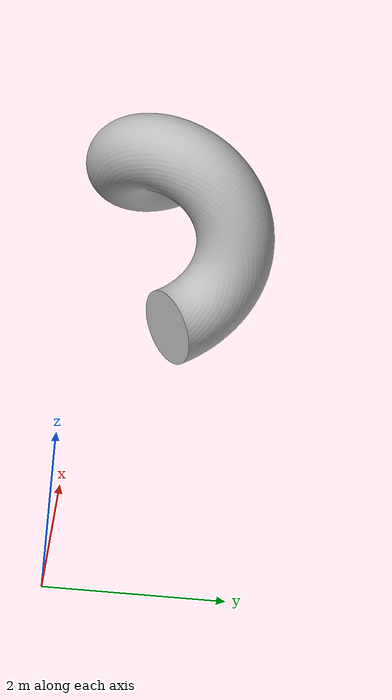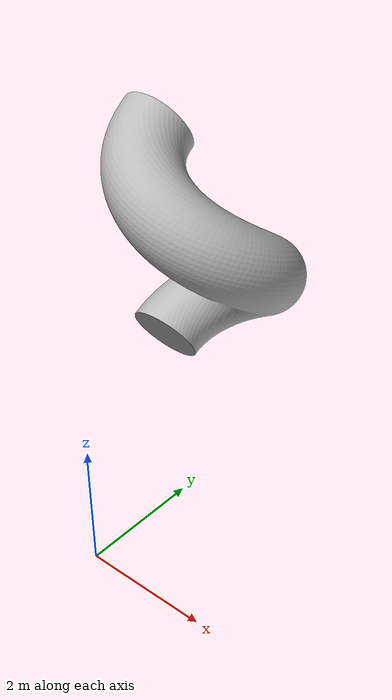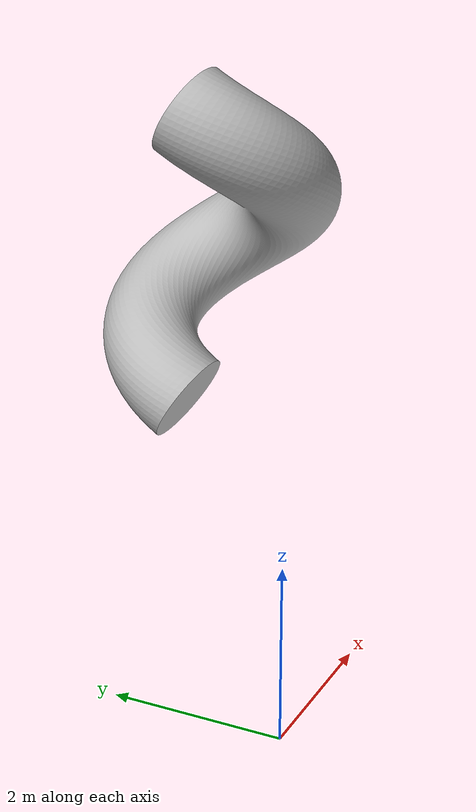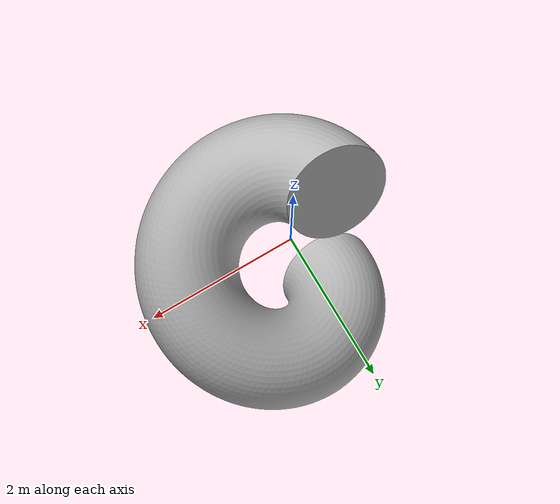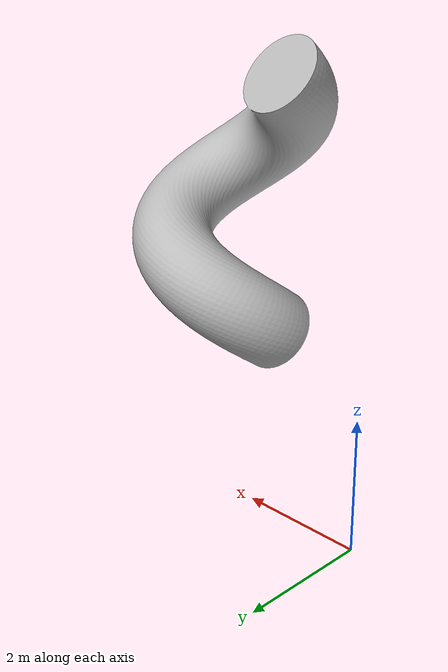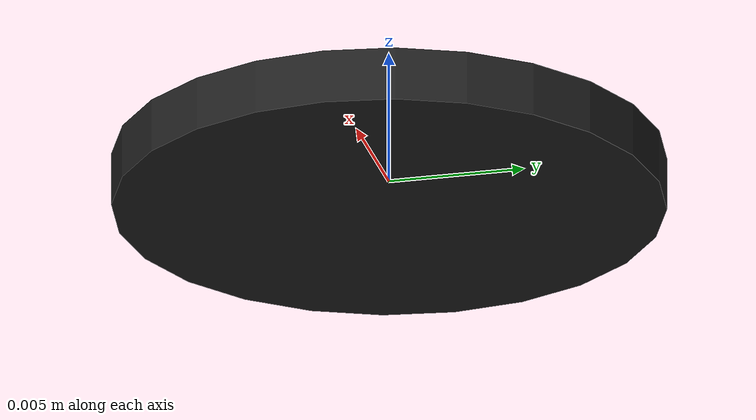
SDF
<?xml version="1.0" ?>
<!-- DO NOT EDIT: Generated from balloon.sdf.jinja -->
<sdf version="1.5">

  <model name="balloon">

    <self_collide>false</self_collide>
    <static>false</static>

    <link name="hull">
      <pose>-0.1299999999999999 0 3.1 0 0 0</pose>
      <inertial>
        <pose>0.13428439618155377 0 -0.5179715390893929 0 0 0</pose>
        <mass>7.04475</mass>
        <inertia>
          <ixx>1.2148485000000004</ixx>
          <iyy>4.840654375000001</iyy>
          <izz>7.943951303</izz>
        </inertia>
      </inertial>

      <gravity>true</gravity>
      <self_collide>false</self_collide>
      <velocity_decay/>

      <visual name="hull_visual">
        <geometry>
          <mesh>
            <scale>0.01 0.01 0.01</scale>
            <uri>model://balloon/meshes/balloon.stl</uri>
          </mesh>
        </geometry>
      </visual>

      <collision name="hull_collision">
        <pose>0 0 0 0 0 0</pose>
        <geometry>
          <mesh>
            <scale>0.01 0.01 0.01</scale>
            <uri>model://balloon/meshes/balloon.stl</uri>
          </mesh>
        </geometry>
      </collision>

    </link>

    <model name='gps0'>
      <link name='link'>
        <pose frame=''>0 0 0 0 0 0</pose>
        <inertial>
          <pose frame=''>0 0 0 0 0 0</pose>
          <mass>0.01</mass>
          <inertia>
            <ixx>2.1733e-06</ixx>
            <ixy>0</ixy>
            <ixz>0</ixz>
            <iyy>2.1733e-06</iyy>
            <iyz>0</iyz>
            <izz>1.8e-07</izz>
          </inertia>
        </inertial>
        <visual name='visual'>
          <geometry>
            <cylinder>
              <radius>0.01</radius>
              <length>0.002</length>
            </cylinder>
          </geometry>
          <material>
            <script>
              <name>Gazebo/Black</name>
              <uri>__default__</uri>
            </script>
          </material>
        </visual>
        <sensor name='gps' type='gps'>
          <pose frame=''>0 0 0 0 0 0</pose>
          <plugin name='gps_plugin' filename='libgazebo_gps_plugin.so'>
            <robotNamespace/>
            <gpsNoise>1</gpsNoise>
            <gpsXYRandomWalk>2.0</gpsXYRandomWalk>
            <gpsZRandomWalk>4.0</gpsZRandomWalk>
            <gpsXYNoiseDensity>0.0002</gpsXYNoiseDensity>
            <gpsZNoiseDensity>0.0004</gpsZNoiseDensity>
            <gpsVXYNoiseDensity>0.2</gpsVXYNoiseDensity>
            <gpsVZNoiseDensity>0.4</gpsVZNoiseDensity>
          </plugin>
        </sensor>
      </link>
    </model>
    <joint name='gps0_joint' type='fixed'>
      <parent>hull</parent>
      <child>gps0::link</child>
    </joint>

    <plugin name='gazebo_airship_dynamics_plugin' filename='libgazebo_airship_dynamics_plugin.so'>
      <robotNamespace/>
      <linkName>hull</linkName>
      <hullVolume>5.97</hullVolume>
      <airDensity>1.225</airDensity>
      <m11>0.34094584</m11>
      <m22>6.89645916</m22>
      <m26>0.8003539</m26>
      <m33>6.89645916</m33>
      <m35>-0.8003539</m35>
      <m44>0.03909877</m44>
      <m53>-0.8003539</m53>
      <m55>4.51385307</m55>
      <m62>0.8003539</m62>
      <m66>4.51385307</m66>
      <distCOV>2.22</distCOV>
      <distPotentialFlow>3.758</distPotentialFlow>
      <distFinCenter>3.884</distFinCenter>
      <distQuarterChord>0.7454</distQuarterChord>
      <forceHullInviscidFlowCoeff>-0.9576310423950283</forceHullInviscidFlowCoeff>
      <forceHullViscousFlowCoeff>0.5829522229750153</forceHullViscousFlowCoeff>
      <momentHullInviscidFlowCoeff>1.9534480725890846</momentHullInviscidFlowCoeff>
      <momentHullViscousFlowCoeff>-1.1196943420983705</momentHullViscousFlowCoeff>
      <finNormalForceCoeff>0.552208563394833</finNormalForceCoeff>
      <finStallAngle>19.098</finStallAngle>
      <axialDragCoeff>0.35</axialDragCoeff>
      <windSubTopic>/wind_vel</windSubTopic>
    </plugin>

    <plugin name='gazebo_imu_plugin' filename='libgazebo_imu_plugin.so'>
      <robotNamespace/>
      <linkName>hull</linkName>
      <imuTopic>/imu</imuTopic>
      <gyroscopeNoiseDensity>0.0003394</gyroscopeNoiseDensity>
      <gyroscopeRandomWalk>3.8785e-05</gyroscopeRandomWalk>
      <gyroscopeBiasCorrelationTime>1000.0</gyroscopeBiasCorrelationTime>
      <gyroscopeTurnOnBiasSigma>0.0087</gyroscopeTurnOnBiasSigma>
      <accelerometerNoiseDensity>0.004</accelerometerNoiseDensity>
      <accelerometerRandomWalk>0.006</accelerometerRandomWalk>
      <accelerometerBiasCorrelationTime>300.0</accelerometerBiasCorrelationTime>
      <accelerometerTurnOnBiasSigma>0.196</accelerometerTurnOnBiasSigma>
    </plugin>

    <plugin name='magnetometer_plugin' filename='libgazebo_magnetometer_plugin.so'>
      <robotNamespace/>
      <pubRate>20</pubRate>
      <noiseDensity>0.0004</noiseDensity>
      <randomWalk>6.4e-06</randomWalk>
      <biasCorrelationTime>600</biasCorrelationTime>
      <magTopic>/mag</magTopic>
    </plugin>

    <plugin name='barometer_plugin' filename='libgazebo_barometer_plugin.so'>
      <robotNamespace/>
      <pubRate>10</pubRate>
      <baroTopic>/baro</baroTopic>
    </plugin>

    <plugin name='mavlink_interface' filename='libgazebo_mavlink_interface.so'>
      <robotNamespace/>
      <imuSubTopic>/imu</imuSubTopic>
      <gpsSubTopic>/gps</gpsSubTopic>
      <magSubTopic>/mag</magSubTopic>
      <baroSubTopic>/baro</baroSubTopic>

      <mavlink_addr>INADDR_ANY</mavlink_addr>
      <mavlink_udp_port>14560</mavlink_udp_port>
      <mavlink_tcp_port>4560</mavlink_tcp_port>
      <serialEnabled>false</serialEnabled>
      <serialDevice>/dev/ttyACM0</serialDevice>
      <baudRate>921600</baudRate>
      <qgc_addr>INADDR_ANY</qgc_addr>
      <qgc_udp_port>14550</qgc_udp_port>

      <hil_mode>false</hil_mode>
      <hil_state_level>false</hil_state_level>
      <enable_lockstep>true</enable_lockstep>
      <use_tcp>true</use_tcp>

      <send_vision_estimation>true</send_vision_estimation>
      <send_odometry>false</send_odometry>

    </plugin>

  </model>

</sdf>

<!-- vim: set et ft=xml fenc=utf-8 ff=unix sts=0 sw=2 ts=2 : -->
